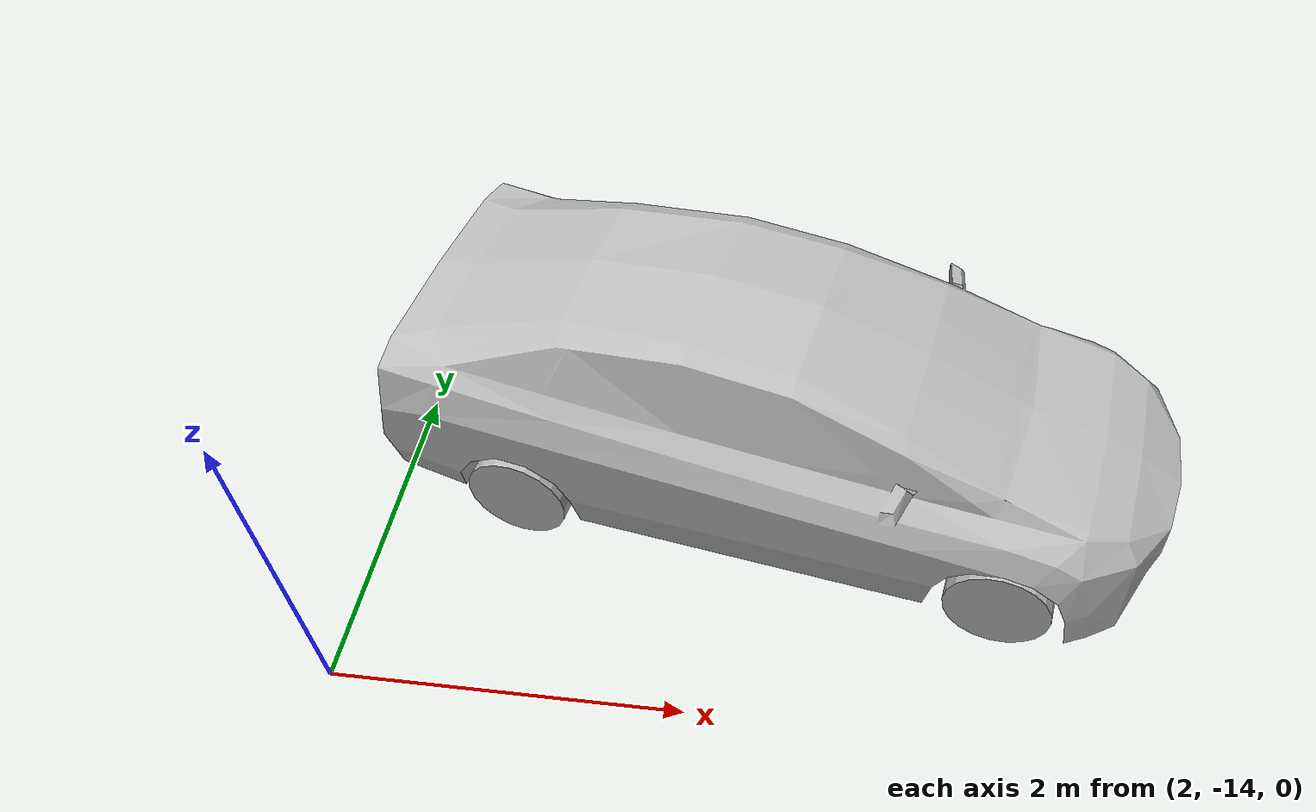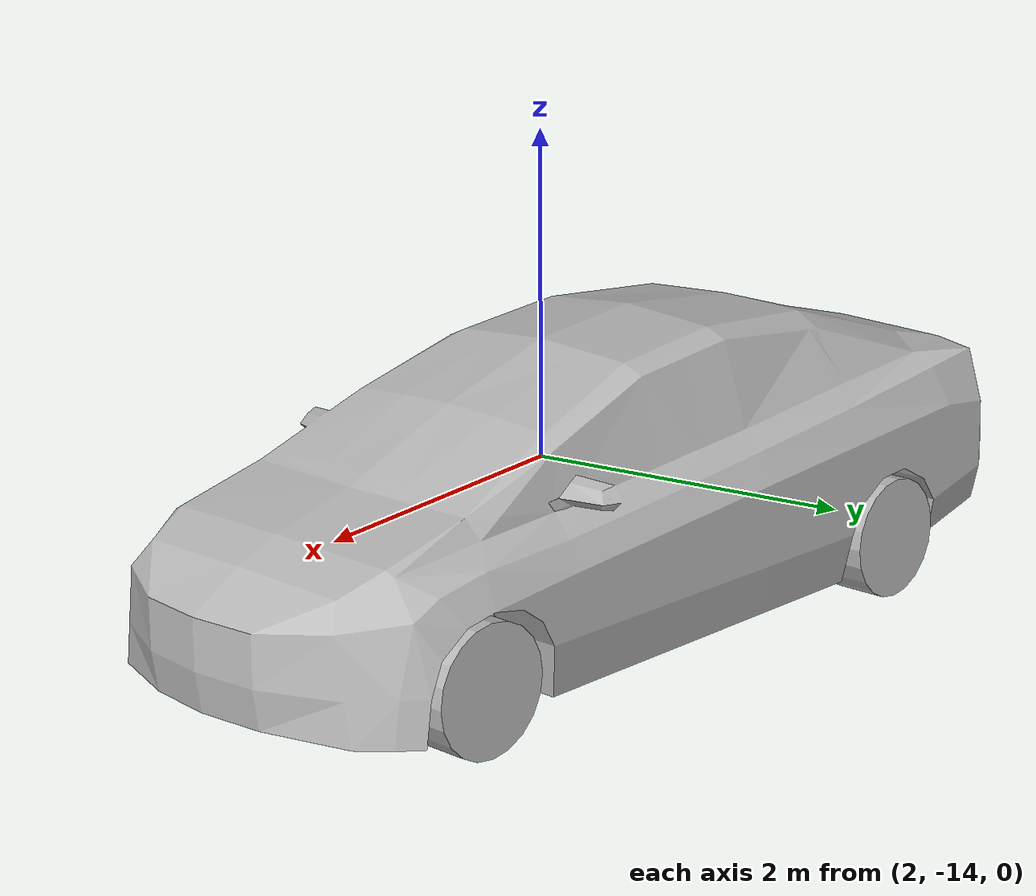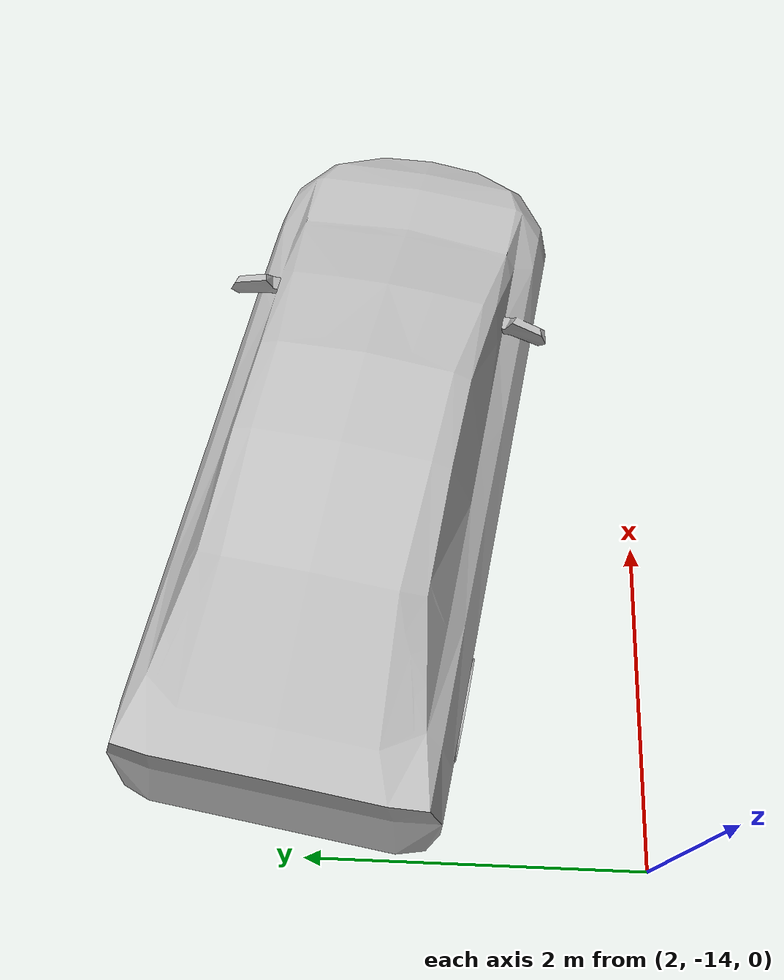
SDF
<sdf version="1.6">
 <world name="default">
  <model name="prius">
   <link name="base_link">
    <inertial>
     <mass>1</mass>
     <inertia><ixx>0.001</ixx><ixy>0</ixy><ixz>0</ixz><iyy>0.001</iyy><iyz>0</iyz><izz>0.001</izz></inertia>
    </inertial>
   </link>
   <link name="chassis">
    <pose>1.45 0 0 0 -0 1.57</pose>
    <inertial>
     <pose>-0.000685 0.000219 0.485273 0 -0 1.5708</pose>
     <mass>1373</mass>
     <inertia>
      <ixx>2594.97</ixx>
      <ixy>2.02236</ixy>
      <ixz>-1.01442</ixz>
      <iyy>647.465</iyy>
      <iyz>-0.0138395</iyz>
      <izz>2739.57</izz>
     </inertia>
    </inertial>
    <collision name="chassis_collision">
     <pose>0 0.05 0.625 0 -0 0</pose>
     <geometry><box><size>1.7526 2.1 0.95</size></box></geometry>
    </collision>
    <collision name="chassis_fixed_joint_lump__front_bumper_collision_1">
     <pose>0 -2 0.458488 0 -0 0</pose>
     <geometry><box><size>1.33728 0.48 0.566691</size></box></geometry>
    </collision>
    <collision name="chassis_fixed_joint_lump__hood_collision_2">
     <pose>0 -1.90084 0.676305 0.341247 -0 0</pose>
     <geometry><box><size>1.59797 0.493107 0.265468</size></box></geometry>
    </collision>
    <collision name="chassis_fixed_joint_lump__windshield_collision_3">
     <pose>0 -0.875105 1.03227 0.335476 -0 0</pose>
     <geometry><box><size>1.16838 1.65425 0.272347</size></box></geometry>
    </collision>
    <collision name="chassis_fixed_joint_lump__top_front_collision_4">
     <pose>0 0.161236 1.38604 0.13503 -0 0</pose>
     <geometry><box><size>1.27915 0.625988 0.171868</size></box></geometry>
    </collision>
    <collision name="chassis_fixed_joint_lump__top_rear_collision_5">
     <pose>0 0.817696 1.36007 -0.068997 0 0</pose>
     <geometry><box><size>1.28513 0.771189 0.226557</size></box></geometry>
    </collision>
    <collision name="chassis_fixed_joint_lump__rear_window_collision_6">
     <pose>0 1.64053 1.17513 -0.262017 0 0</pose>
     <geometry><box><size>1.26785 1.11634 0.244286</size></box></geometry>
    </collision>
    <collision name="chassis_fixed_joint_lump__trunk_collision_7">
     <pose>0 1.63706 0.88818 0 -0 0</pose>
     <geometry><box><size>1.78806 1.13899 0.482746</size></box></geometry>
    </collision>
    <collision name="chassis_fixed_joint_lump__back_bumper_collision_8">
     <pose>0 2.05445 0.57787 0 -0 0</pose>
     <geometry><box><size>1.78165 0.512093 0.581427</size></box></geometry>
    </collision>
    <visual name="chassis_visual">
     <geometry>
      <mesh>
       <scale>0.01 0.01 0.01</scale>
       <uri>/tmp/workspace/src/prius_description/meshes/hybrid_body.obj</uri>
      </mesh>
     </geometry>
    </visual>
    <sensor name="back_camera_sensor" type="camera">
     <update_rate>30</update_rate>
     <camera name="back_camera">
      <horizontal_fov>1.39626</horizontal_fov>
      <image><width>800</width><height>800</height><format>R8G8B8</format></image>
      <clip><near>0.02</near><far>300</far></clip>
      <noise><type>gaussian</type><mean>0</mean><stddev>0.007</stddev></noise>
     </camera>
     <plugin name="back_camera_controller" filename="libgazebo_ros_camera.so">
      <alwaysOn>0</alwaysOn>
      <updateRate>0.0</updateRate>
      <cameraName>/prius/back_camera</cameraName>
      <imageTopicName>image_raw</imageTopicName>
      <cameraInfoTopicName>/prius/back_camera/camera_info</cameraInfoTopicName>
      <frameName>back_camera_link_optical</frameName>
      <hackBaseline>0.07</hackBaseline>
      <distortionK1>0.0</distortionK1>
      <distortionK2>0.0</distortionK2>
      <distortionK3>0.0</distortionK3>
      <distortionT1>0.0</distortionT1>
      <distortionT2>0.0</distortionT2>
      <robotNamespace>/</robotNamespace>
     </plugin>
     <pose>0 1.45 1.4 0 0.05 1.5707</pose>
    </sensor>
    <sensor name="back_left_far_sonar_sensor" type="ray">
     <ray>
      <scan>
       <horizontal>
        <samples>1</samples>
        <resolution>1</resolution>
        <min_angle>0</min_angle>
        <max_angle>0</max_angle>
       </horizontal>
       <vertical><samples>1</samples><min_angle>0</min_angle><max_angle>0</max_angle></vertical>
      </scan>
      <range><min>0.2</min><max>5</max><resolution>0.1</resolution></range>
     </ray>
     <plugin name="back_left_far_sonar_sensor" filename="libgazebo_ros_range.so">
      <topicName>/prius/back_sonar/left_far_range</topicName>
      <frameName>back_left_far_sonar_link</frameName>
      <robotNamespace>/</robotNamespace>
     </plugin>
     <always_on>0</always_on>
     <update_rate>5</update_rate>
     <visualize>0</visualize>
     <pose>0.7 2.4 0.5 0 -0 1.5707</pose>
    </sensor>
    <sensor name="back_left_middle_sonar_sensor" type="ray">
     <ray>
      <scan>
       <horizontal>
        <samples>1</samples>
        <resolution>1</resolution>
        <min_angle>0</min_angle>
        <max_angle>0</max_angle>
       </horizontal>
       <vertical><samples>1</samples><min_angle>0</min_angle><max_angle>0</max_angle></vertical>
      </scan>
      <range><min>0.2</min><max>5</max><resolution>0.1</resolution></range>
     </ray>
     <plugin name="back_left_middle_sonar_sensor" filename="libgazebo_ros_range.so">
      <topicName>/prius/back_sonar/left_middle_range</topicName>
      <frameName>back_left_middle_sonar_link</frameName>
      <robotNamespace>/</robotNamespace>
     </plugin>
     <always_on>0</always_on>
     <update_rate>5</update_rate>
     <visualize>0</visualize>
     <pose>0.24 2.4 0.5 0 -0 1.5707</pose>
    </sensor>
    <sensor name="back_right_far_sonar_sensor" type="ray">
     <ray>
      <scan>
       <horizontal>
        <samples>1</samples>
        <resolution>1</resolution>
        <min_angle>0</min_angle>
        <max_angle>0</max_angle>
       </horizontal>
       <vertical><samples>1</samples><min_angle>0</min_angle><max_angle>0</max_angle></vertical>
      </scan>
      <range><min>0.2</min><max>5</max><resolution>0.1</resolution></range>
     </ray>
     <plugin name="back_right_far_sonar_sensor" filename="libgazebo_ros_range.so">
      <topicName>/prius/back_sonar/right_far_range</topicName>
      <frameName>back_right_far_sonar_link</frameName>
      <robotNamespace>/</robotNamespace>
     </plugin>
     <always_on>0</always_on>
     <update_rate>5</update_rate>
     <visualize>0</visualize>
     <pose>-0.7 2.4 0.5 0 -0 1.5707</pose>
    </sensor>
    <sensor name="back_right_middle_sonar_sensor" type="ray">
     <ray>
      <scan>
       <horizontal>
        <samples>1</samples>
        <resolution>1</resolution>
        <min_angle>0</min_angle>
        <max_angle>0</max_angle>
       </horizontal>
       <vertical><samples>1</samples><min_angle>0</min_angle><max_angle>0</max_angle></vertical>
      </scan>
      <range><min>0.2</min><max>5</max><resolution>0.1</resolution></range>
     </ray>
     <plugin name="back_right_middle_sonar_sensor" filename="libgazebo_ros_range.so">
      <topicName>/prius/back_sonar/right_middle_range</topicName>
      <frameName>back_right_middle_sonar_link</frameName>
      <robotNamespace>/</robotNamespace>
     </plugin>
     <always_on>0</always_on>
     <update_rate>5</update_rate>
     <visualize>0</visualize>
     <pose>-0.24 2.4 0.5 0 -0 1.5707</pose>
    </sensor>
    <sensor name="center_laser_sensor" type="ray">
     <ray>
      <scan>
       <horizontal>
        <samples>512</samples>
        <resolution>1</resolution>
        <min_angle>-3.14</min_angle>
        <max_angle>3.14</max_angle>
       </horizontal>
       <vertical><samples>16</samples><min_angle>-0.1</min_angle><max_angle>-0.35</max_angle></vertical>
      </scan>
      <range><min>0.2</min><max>30</max><resolution>0.01</resolution></range>
     </ray>
     <plugin name="center_laser" filename="libgazebo_ros_block_laser.so">
      <topicName>/prius/center_laser/scan</topicName>
      <frameName>center_laser_link</frameName>
      <robotNamespace>/</robotNamespace>
     </plugin>
     <always_on>1</always_on>
     <update_rate>30</update_rate>
     <visualize>0</visualize>
     <pose>0 0.4 1.8 0 0 -1.5707</pose>
    </sensor>
    <sensor name="front_camera_sensor" type="camera">
     <update_rate>30</update_rate>
     <camera name="front_camera">
      <horizontal_fov>1.39626</horizontal_fov>
      <image><width>800</width><height>800</height><format>R8G8B8</format></image>
      <clip><near>0.02</near><far>300</far></clip>
      <noise><type>gaussian</type><mean>0</mean><stddev>0.007</stddev></noise>
     </camera>
     <plugin name="front_camera_controller" filename="libgazebo_ros_camera.so">
      <alwaysOn>0</alwaysOn>
      <updateRate>0.0</updateRate>
      <cameraName>/prius/front_camera</cameraName>
      <imageTopicName>image_raw</imageTopicName>
      <cameraInfoTopicName>/prius/front_camera/camera_info</cameraInfoTopicName>
      <frameName>front_camera_link_optical</frameName>
      <hackBaseline>0.07</hackBaseline>
      <distortionK1>0.0</distortionK1>
      <distortionK2>0.0</distortionK2>
      <distortionK3>0.0</distortionK3>
      <distortionT1>0.0</distortionT1>
      <distortionT2>0.0</distortionT2>
      <robotNamespace>/</robotNamespace>
     </plugin>
     <pose>0 -0.4 1.4 0 0.05 -1.5707</pose>
    </sensor>
    <sensor name="front_left_laser_sensor" type="ray">
     <ray>
      <scan>
       <horizontal>
        <samples>640</samples>
        <resolution>1</resolution>
        <min_angle>-2.26889</min_angle>
        <max_angle>2.2689</max_angle>
       </horizontal>
       <vertical><samples>1</samples><min_angle>0</min_angle><max_angle>0</max_angle></vertical>
      </scan>
      <range><min>0.2</min><max>30</max><resolution>0.01</resolution></range>
     </ray>
     <plugin name="front_left_laser" filename="libgazebo_ros_laser.so">
      <topicName>/prius/front_left_laser/scan</topicName>
      <frameName>front_left_laser_link</frameName>
      <robotNamespace>/</robotNamespace>
     </plugin>
     <always_on>1</always_on>
     <update_rate>30</update_rate>
     <visualize>0</visualize>
     <pose>1 -2.3 0.5 0 0.05 0</pose>
    </sensor>
    <sensor name="front_right_far_sonar_sensor" type="ray">
     <ray>
      <scan>
       <horizontal>
        <samples>1</samples>
        <resolution>1</resolution>
        <min_angle>0</min_angle>
        <max_angle>0</max_angle>
       </horizontal>
       <vertical><samples>1</samples><min_angle>0</min_angle><max_angle>0</max_angle></vertical>
      </scan>
      <range><min>0.2</min><max>5</max><resolution>0.1</resolution></range>
     </ray>
     <plugin name="front_right_far_sonar_sensor" filename="libgazebo_ros_range.so">
      <topicName>/prius/front_sonar/right_far_range</topicName>
      <frameName>front_right_far_sonar_link</frameName>
      <robotNamespace>/</robotNamespace>
     </plugin>
     <always_on>0</always_on>
     <update_rate>5</update_rate>
     <visualize>0</visualize>
     <pose>-0.7 -2.1 0.5 0 0 -1.5707</pose>
    </sensor>
    <sensor name="front_right_laser_sensor" type="ray">
     <ray>
      <scan>
       <horizontal>
        <samples>640</samples>
        <resolution>1</resolution>
        <min_angle>-2.26889</min_angle>
        <max_angle>2.2689</max_angle>
       </horizontal>
       <vertical><samples>1</samples><min_angle>0</min_angle><max_angle>0</max_angle></vertical>
      </scan>
      <range><min>0.2</min><max>30</max><resolution>0.01</resolution></range>
     </ray>
     <plugin name="front_right_laser" filename="libgazebo_ros_laser.so">
      <topicName>/prius/front_right_laser/scan</topicName>
      <frameName>front_right_laser_link</frameName>
      <robotNamespace>/</robotNamespace>
     </plugin>
     <always_on>1</always_on>
     <update_rate>30</update_rate>
     <visualize>0</visualize>
     <pose>-1 -2.3 0.5 -0 0.05 3.14</pose>
    </sensor>
    <sensor name="front_right_middle_sonar_sensor" type="ray">
     <ray>
      <scan>
       <horizontal>
        <samples>1</samples>
        <resolution>1</resolution>
        <min_angle>0</min_angle>
        <max_angle>0</max_angle>
       </horizontal>
       <vertical><samples>1</samples><min_angle>0</min_angle><max_angle>0</max_angle></vertical>
      </scan>
      <range><min>0.2</min><max>5</max><resolution>0.1</resolution></range>
     </ray>
     <plugin name="front_right_middle_sonar_sensor" filename="libgazebo_ros_range.so">
      <topicName>/prius/front_sonar/right_middle_range</topicName>
      <frameName>front_right_middle_sonar_link</frameName>
      <robotNamespace>/</robotNamespace>
     </plugin>
     <always_on>0</always_on>
     <update_rate>5</update_rate>
     <visualize>0</visualize>
     <pose>-0.24 -2.3 0.5 0 0 -1.5707</pose>
    </sensor>
    <sensor name="left_camera_sensor" type="camera">
     <update_rate>30</update_rate>
     <camera name="left_camera">
      <horizontal_fov>1.39626</horizontal_fov>
      <image><width>800</width><height>800</height><format>R8G8B8</format></image>
      <clip><near>0.02</near><far>300</far></clip>
      <noise><type>gaussian</type><mean>0</mean><stddev>0.007</stddev></noise>
     </camera>
     <plugin name="left_camera_controller" filename="libgazebo_ros_camera.so">
      <alwaysOn>0</alwaysOn>
      <updateRate>0.0</updateRate>
      <cameraName>/prius/left_camera</cameraName>
      <imageTopicName>image_raw</imageTopicName>
      <cameraInfoTopicName>/prius/left_camera/camera_info</cameraInfoTopicName>
      <frameName>left_camera_link_optical</frameName>
      <hackBaseline>0.07</hackBaseline>
      <distortionK1>0.0</distortionK1>
      <distortionK2>0.0</distortionK2>
      <distortionK3>0.0</distortionK3>
      <distortionT1>0.0</distortionT1>
      <distortionT2>0.0</distortionT2>
      <robotNamespace>/</robotNamespace>
     </plugin>
     <pose>1 -0.7 1 0 0.05 1</pose>
    </sensor>
    <sensor name="right_camera_sensor" type="camera">
     <update_rate>30</update_rate>
     <camera name="right_camera">
      <horizontal_fov>1.39626</horizontal_fov>
      <image><width>800</width><height>800</height><format>R8G8B8</format></image>
      <clip><near>0.02</near><far>300</far></clip>
      <noise><type>gaussian</type><mean>0</mean><stddev>0.007</stddev></noise>
     </camera>
     <plugin name="right_camera_controller" filename="libgazebo_ros_camera.so">
      <alwaysOn>0</alwaysOn>
      <updateRate>0.0</updateRate>
      <cameraName>/prius/right_camera</cameraName>
      <imageTopicName>image_raw</imageTopicName>
      <cameraInfoTopicName>/prius/right_camera/camera_info</cameraInfoTopicName>
      <frameName>right_camera_link_optical</frameName>
      <hackBaseline>0.07</hackBaseline>
      <distortionK1>0.0</distortionK1>
      <distortionK2>0.0</distortionK2>
      <distortionK3>0.0</distortionK3>
      <distortionT1>0.0</distortionT1>
      <distortionT2>0.0</distortionT2>
      <robotNamespace>/</robotNamespace>
     </plugin>
     <pose>-1 -0.7 1 0 0.05 2.1416</pose>
    </sensor>
   </link>
   <joint name="base_link_connection" type="revolute">
    <child>chassis</child>
    <parent>base_link</parent>
    <axis>
     <limit><lower>0</lower><upper>0</upper></limit>
     <dynamics>
      <damping>0</damping>
      <friction>0</friction>
      <spring_reference>0</spring_reference>
      <spring_stiffness>0</spring_stiffness>
     </dynamics>
     <use_parent_model_frame>1</use_parent_model_frame>
     <xyz>0 0 1</xyz>
    </axis>
    <physics><ode><limit><cfm>0</cfm><erp>0.2</erp></limit></ode></physics>
   </joint>
   <link name="fl_axle">
    <pose>2.86061 0.765877 0.3 0 -0 1.57</pose>
    <inertial>
     <mass>1</mass>
     <inertia><ixx>0.004</ixx><ixy>0</ixy><ixz>0</ixz><iyy>0.004</iyy><iyz>0</iyz><izz>0.004</izz></inertia>
    </inertial>
   </link>
   <joint name="front_left_steer_joint" type="revolute">
    <child>fl_axle</child>
    <parent>chassis</parent>
    <axis>
     <xyz>0 0 1</xyz>
     <limit><lower>-1e+16</lower><upper>1e+16</upper></limit>
     <dynamics><spring_reference>0</spring_reference><spring_stiffness>0</spring_stiffness></dynamics>
     <use_parent_model_frame>1</use_parent_model_frame>
    </axis>
   </joint>
   <link name="front_left_wheel">
    <pose>2.86061 0.765877 0.3 0 -0 1.57</pose>
    <inertial>
     <mass>11</mass>
     <inertia>
      <ixx>0.586312</ixx>
      <ixy>0</ixy>
      <ixz>0</ixz>
      <iyy>0.335529</iyy>
      <iyz>0</iyz>
      <izz>0.335529</izz>
     </inertia>
    </inertial>
    <collision name="front_left_wheel_collision_collision">
     <geometry><sphere><radius>0.31265</radius></sphere></geometry>
     <surface>
      <contact><ode><kp>1e+08</kp><min_depth>0.005</min_depth></ode></contact>
      <friction><ode><mu>0.9</mu><mu2>0.9</mu2></ode></friction>
     </surface>
    </collision>
    <visual name="front_left_wheel_visual">
     <geometry>
      <mesh><scale>0.01 0.01 0.01</scale><uri>/tmp/workspace/src/prius_description/meshes/wheel.obj</uri></mesh>
     </geometry>
     <material><script><uri>__default__</uri><name>__default__</name></script></material>
    </visual>
   </link>
   <joint name="front_left_wheel_joint" type="revolute">
    <child>front_left_wheel</child>
    <parent>fl_axle</parent>
    <axis>
     <xyz>0.000796 1 0</xyz>
     <limit><lower>-1e+16</lower><upper>1e+16</upper></limit>
     <dynamics><spring_reference>0</spring_reference><spring_stiffness>0</spring_stiffness></dynamics>
     <use_parent_model_frame>1</use_parent_model_frame>
    </axis>
   </joint>
   <link name="fr_axle">
    <pose>2.85939 -0.768123 0.3 0 -0 1.57</pose>
    <inertial>
     <mass>1</mass>
     <inertia><ixx>0.004</ixx><ixy>0</ixy><ixz>0</ixz><iyy>0.004</iyy><iyz>0</iyz><izz>0.004</izz></inertia>
    </inertial>
   </link>
   <joint name="front_right_steer_joint" type="revolute">
    <child>fr_axle</child>
    <parent>chassis</parent>
    <axis>
     <xyz>0 0 1</xyz>
     <limit><lower>-1e+16</lower><upper>1e+16</upper></limit>
     <dynamics><spring_reference>0</spring_reference><spring_stiffness>0</spring_stiffness></dynamics>
     <use_parent_model_frame>1</use_parent_model_frame>
    </axis>
   </joint>
   <link name="front_right_wheel">
    <pose>2.85939 -0.768123 0.3 0 -0 1.57</pose>
    <inertial>
     <mass>11</mass>
     <inertia>
      <ixx>0.586312</ixx>
      <ixy>0</ixy>
      <ixz>0</ixz>
      <iyy>0.335529</iyy>
      <iyz>0</iyz>
      <izz>0.335529</izz>
     </inertia>
    </inertial>
    <collision name="front_right_wheel_collision_collision">
     <geometry><sphere><radius>0.31265</radius></sphere></geometry>
     <surface>
      <contact><ode><kp>1e+08</kp><min_depth>0.005</min_depth></ode></contact>
      <friction><ode><mu>0.9</mu><mu2>0.9</mu2></ode></friction>
     </surface>
    </collision>
    <visual name="front_right_wheel_visual">
     <geometry>
      <mesh><scale>0.01 0.01 0.01</scale><uri>/tmp/workspace/src/prius_description/meshes/wheel.obj</uri></mesh>
     </geometry>
     <material><script><uri>__default__</uri><name>__default__</name></script></material>
    </visual>
   </link>
   <joint name="front_right_wheel_joint" type="revolute">
    <child>front_right_wheel</child>
    <parent>fr_axle</parent>
    <axis>
     <xyz>0.000796 1 0</xyz>
     <limit><lower>-1e+16</lower><upper>1e+16</upper></limit>
     <dynamics><spring_reference>0</spring_reference><spring_stiffness>0</spring_stiffness></dynamics>
     <use_parent_model_frame>1</use_parent_model_frame>
    </axis>
   </joint>
   <link name="rear_left_wheel">
    <pose>0.000632 0.794154 0.3 0 -0 1.57</pose>
    <inertial>
     <mass>11</mass>
     <inertia>
      <ixx>0.586312</ixx>
      <ixy>0</ixy>
      <ixz>0</ixz>
      <iyy>0.335529</iyy>
      <iyz>0</iyz>
      <izz>0.335529</izz>
     </inertia>
    </inertial>
    <collision name="rear_left_wheel_collision_collision">
     <geometry><sphere><radius>0.31265</radius></sphere></geometry>
     <surface>
      <contact><ode><kp>1e+08</kp><min_depth>0.005</min_depth></ode></contact>
      <friction><ode><mu>0.9</mu><mu2>0.9</mu2></ode></friction>
     </surface>
    </collision>
    <visual name="rear_left_wheel_visual">
     <geometry>
      <mesh><scale>0.01 0.01 0.01</scale><uri>/tmp/workspace/src/prius_description/meshes/wheel.obj</uri></mesh>
     </geometry>
     <material><script><uri>__default__</uri><name>__default__</name></script></material>
    </visual>
   </link>
   <joint name="rear_left_wheel_joint" type="revolute">
    <child>rear_left_wheel</child>
    <parent>chassis</parent>
    <axis>
     <xyz>0.000796 1 0</xyz>
     <limit><lower>-1e+16</lower><upper>1e+16</upper></limit>
     <dynamics><spring_reference>0</spring_reference><spring_stiffness>0</spring_stiffness></dynamics>
     <use_parent_model_frame>1</use_parent_model_frame>
    </axis>
   </joint>
   <link name="rear_right_wheel">
    <pose>-0.000631 -0.791845 0.3 0 -0 1.57</pose>
    <inertial>
     <mass>11</mass>
     <inertia>
      <ixx>0.586312</ixx>
      <ixy>0</ixy>
      <ixz>0</ixz>
      <iyy>0.335529</iyy>
      <iyz>0</iyz>
      <izz>0.335529</izz>
     </inertia>
    </inertial>
    <collision name="rear_right_wheel_collision_collision">
     <geometry><sphere><radius>0.31265</radius></sphere></geometry>
     <surface>
      <contact><ode><kp>1e+08</kp><min_depth>0.005</min_depth></ode></contact>
      <friction><ode><mu>0.9</mu><mu2>0.9</mu2></ode></friction>
     </surface>
    </collision>
    <visual name="rear_right_wheel_visual">
     <geometry>
      <mesh><scale>0.01 0.01 0.01</scale><uri>/tmp/workspace/src/prius_description/meshes/wheel.obj</uri></mesh>
     </geometry>
     <material><script><uri>__default__</uri><name>__default__</name></script></material>
    </visual>
   </link>
   <joint name="rear_right_wheel_joint" type="revolute">
    <child>rear_right_wheel</child>
    <parent>chassis</parent>
    <axis>
     <xyz>0.000796 1 0</xyz>
     <limit><lower>-1e+16</lower><upper>1e+16</upper></limit>
     <dynamics><spring_reference>0</spring_reference><spring_stiffness>0</spring_stiffness></dynamics>
     <use_parent_model_frame>1</use_parent_model_frame>
    </axis>
   </joint>
   <link name="steering_wheel">
    <pose>2.07815 0.357234 0.988243 -1.3021 0 1.57</pose>
    <inertial>
     <mass>1</mass>
     <inertia><ixx>0.145833</ixx><ixy>0</ixy><ixz>0</ixz><iyy>0.145833</iyy><iyz>0</iyz><izz>0.125</izz></inertia>
    </inertial>
    <visual name="steering_wheel_visual">
     <pose>0 0 0 1.3021 -0 0</pose>
     <geometry>
      <mesh>
       <scale>0.01 0.01 0.01</scale>
       <uri>/tmp/workspace/src/prius_description/meshes/steering_wheel.obj</uri>
      </mesh>
     </geometry>
    </visual>
   </link>
   <joint name="steering_joint" type="revolute">
    <child>steering_wheel</child>
    <parent>chassis</parent>
    <axis>
     <xyz>-0.964118 0.000768 0.265474</xyz>
     <limit><lower>-1e+16</lower><upper>1e+16</upper></limit>
     <dynamics><spring_reference>0</spring_reference><spring_stiffness>0</spring_stiffness></dynamics>
     <use_parent_model_frame>1</use_parent_model_frame>
    </axis>
   </joint>
   <plugin name="pruis_hybrid_drive" filename="libPriusHybridPlugin.so">
    <chassis>chassis</chassis>
    <front_left_wheel>front_left_wheel_joint</front_left_wheel>
    <front_right_wheel>front_right_wheel_joint</front_right_wheel>
    <front_left_wheel_steering>front_left_steer_joint</front_left_wheel_steering>
    <front_right_wheel_steering>front_right_steer_joint</front_right_wheel_steering>
    <back_left_wheel>rear_left_wheel_joint</back_left_wheel>
    <back_right_wheel>rear_right_wheel_joint</back_right_wheel>
    <steering_wheel>steering_joint</steering_wheel>
    <chassis_aero_force_gain>0.63045</chassis_aero_force_gain>
    <front_torque>859.4004393000001</front_torque>
    <back_torque>0</back_torque>
    <front_brake_torque>1031.28052716</front_brake_torque>
    <back_brake_torque>687.5203514400001</back_brake_torque>
    <max_speed>37.998337013956565</max_speed>
    <min_gas_flow>8.981854013171626e-05</min_gas_flow>
    <gas_efficiency>0.371</gas_efficiency>
    <battery_charge_watt_hours>291</battery_charge_watt_hours>
    <battery_discharge_watt_hours>214</battery_discharge_watt_hours>
    <max_steer>0.6458</max_steer>
    <flwheel_steering_p_gain>1e4</flwheel_steering_p_gain>
    <frwheel_steering_p_gain>1e4</frwheel_steering_p_gain>
    <flwheel_steering_i_gain>0</flwheel_steering_i_gain>
    <frwheel_steering_i_gain>0</frwheel_steering_i_gain>
    <flwheel_steering_d_gain>3e2</flwheel_steering_d_gain>
    <frwheel_steering_d_gain>3e2</frwheel_steering_d_gain>
    <robotNamespace>/</robotNamespace>
   </plugin>
   <plugin name="joint_state_publisher" filename="libgazebo_ros_joint_state_publisher.so">
    <jointName>rear_right_wheel_joint, rear_left_wheel_joint, front_right_wheel_joint, front_left_wheel_joint, front_right_steer_joint, front_left_steer_joint, steering_joint</jointName>
    <updateRate>100.0</updateRate>
    <alwaysOn>1</alwaysOn>
    <robotNamespace>/</robotNamespace>
   </plugin>
   <static>0</static>
   <plugin name="p3d" filename="libgazebo_ros_p3d.so">
    <bodyName>base_link</bodyName>
    <topicName>base_pose_ground_truth</topicName>
    <frameName>map</frameName>
    <updateRate>100.0</updateRate>
    <robotNamespace>/</robotNamespace>
   </plugin>
   <pose>2.98012 -11.9973 0.00698 0.000273 0.00017 -0.162393</pose>
  </model>
 </world>
</sdf>
